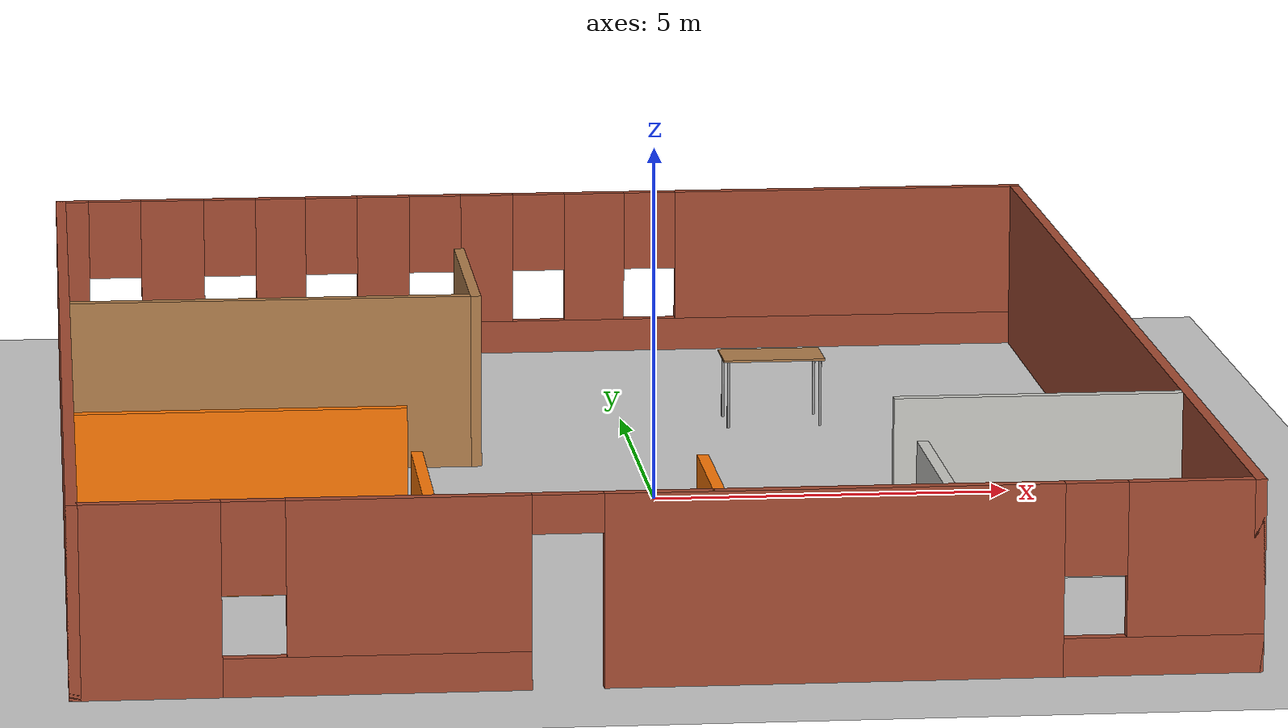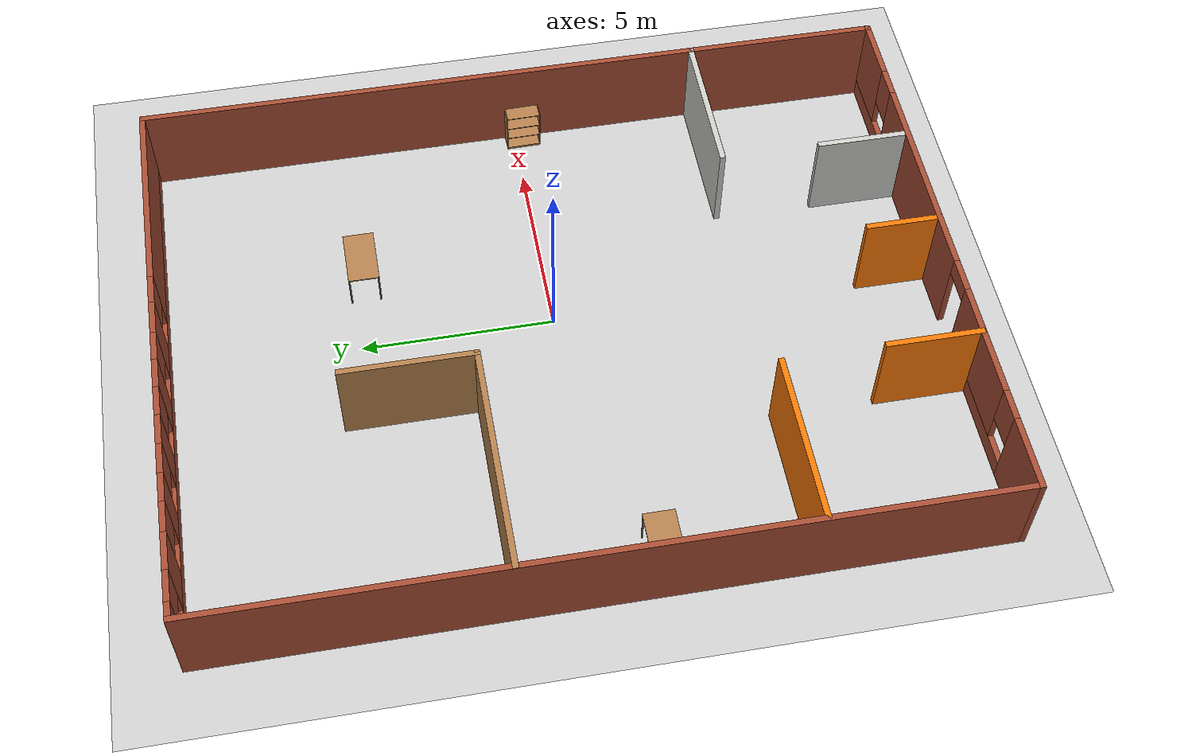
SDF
<sdf version="1.6">
 <world name="default">
  <plugin name="welcome_message" filename="libwelcome_message.so"/>
  <light name="sun" type="directional">
   <pose>0 0 10 0 -0 0</pose>
   <diffuse>0.8 0.8 0.8 1</diffuse>
   <specular>0.2 0.2 0.2 1</specular>
   <attenuation>
    <range>1000</range>
    <constant>0.9</constant>
    <linear>0.01</linear>
    <quadratic>0.001</quadratic>
   </attenuation>
   <direction>-0.5 0.1 -0.9</direction>
  </light>
  <model name="ground_plane">
   <static>1</static>
   <link name="link">
    <collision name="collision">
     <geometry><plane><normal>0 0 1</normal><size>100 100</size></plane></geometry>
     <surface>
      <contact><collide_bitmask>65535</collide_bitmask></contact>
      <friction><ode><mu>100</mu><mu2>50</mu2></ode></friction>
     </surface>
    </collision>
    <visual name="visual">
     <cast_shadows>0</cast_shadows>
     <geometry><plane><normal>0 0 1</normal><size>100 100</size></plane></geometry>
     <material>
      <script><uri>file://media/materials/scripts/gazebo.material</uri><name>Gazebo/Grey</name></script>
     </material>
    </visual>
   </link>
  </model>
  <gravity>0 0 -9.8</gravity>
  <magnetic_field>6e-06 2.3e-05 -4.2e-05</magnetic_field>
  <atmosphere type="adiabatic"/>
  <physics name="default_physics" default="0" type="ode">
   <max_step_size>0.001</max_step_size>
   <real_time_factor>1</real_time_factor>
   <real_time_update_rate>1000</real_time_update_rate>
  </physics>
  <scene><ambient>0.4 0.4 0.4 1</ambient><background>0.7 0.7 0.7 1</background><shadows>1</shadows></scene>
  <spherical_coordinates>
   <surface_model>EARTH_WGS84</surface_model>
   <latitude_deg>0</latitude_deg>
   <longitude_deg>0</longitude_deg>
   <elevation>0</elevation>
   <heading_deg>0</heading_deg>
  </spherical_coordinates>
  <model name="Apartment">
   <pose>-0.78403 0.000494 0 0 -0 0</pose>
   <link name="Wall_0">
    <collision name="Wall_0_Collision">
     <geometry><box><size>20 0.15 2.5</size></box></geometry>
     <pose>0 0 1.25 0 -0 0</pose>
    </collision>
    <visual name="Wall_0_Visual">
     <pose>0 0 1.25 0 -0 0</pose>
     <geometry><box><size>20 0.15 2.5</size></box></geometry>
     <material>
      <script><uri>file://media/materials/scripts/gazebo.material</uri><name>Gazebo/Bricks</name></script>
      <ambient>0.921569 0.807843 0.615686 1</ambient>
     </material>
     <meta><layer>0</layer></meta>
    </visual>
    <pose>-7.42433 0 0 0 -0 1.57073</pose>
   </link>
   <link name="Wall_12">
    <collision name="Wall_12_Collision">
     <geometry><box><size>2.5 0.15 2.5</size></box></geometry>
     <pose>0 0 1.25 0 -0 0</pose>
    </collision>
    <visual name="Wall_12_Visual">
     <pose>0 0 1.25 0 -0 0</pose>
     <geometry><box><size>2.5 0.15 2.5</size></box></geometry>
     <material>
      <script><uri>file://media/materials/scripts/gazebo.material</uri><name>Gazebo/Grey</name></script>
      <ambient>0.996078 0.47451 0.0196078 1</ambient>
     </material>
     <meta><layer>0</layer></meta>
    </visual>
    <pose>-3.01391 -8.72413 0 0 0 -1.5708</pose>
   </link>
   <link name="Wall_20">
    <collision name="Wall_20_Collision">
     <geometry><box><size>2.5 0.15 2.5</size></box></geometry>
     <pose>0 0 1.25 0 -0 0</pose>
    </collision>
    <visual name="Wall_20_Visual">
     <pose>0 0 1.25 0 -0 0</pose>
     <geometry><box><size>2.5 0.15 2.5</size></box></geometry>
     <material>
      <script><uri>file://media/materials/scripts/gazebo.material</uri><name>Gazebo/CeilingTiled</name></script>
      <ambient>1 1 1 1</ambient>
     </material>
     <meta><layer>0</layer></meta>
    </visual>
    <pose>3.49742 -8.74753 0 0 -0 1.5708</pose>
   </link>
   <link name="Wall_22">
    <collision name="Wall_22_Collision">
     <geometry><box><size>4 0.15 2.5</size></box></geometry>
     <pose>0 0 1.25 0 -0 0</pose>
    </collision>
    <visual name="Wall_22_Visual">
     <pose>0 0 1.25 0 -0 0</pose>
     <geometry><box><size>4 0.15 2.5</size></box></geometry>
     <material>
      <script><uri>file://media/materials/scripts/gazebo.material</uri><name>Gazebo/CeilingTiled</name></script>
      <ambient>1 1 1 1</ambient>
     </material>
     <meta><layer>0</layer></meta>
    </visual>
    <pose>5.47445 -4.93437 0 0 -0 3.14159</pose>
   </link>
   <link name="Wall_24">
    <collision name="Wall_24_Collision">
     <geometry><box><size>2 0.15 2.5</size></box></geometry>
     <pose>0 0 1.25 0 -0 0</pose>
    </collision>
    <visual name="Wall_24_Visual">
     <pose>0 0 1.25 0 -0 0</pose>
     <geometry><box><size>2 0.15 2.5</size></box></geometry>
     <material>
      <script><uri>file://media/materials/scripts/gazebo.material</uri><name>Gazebo/Grey</name></script>
      <ambient>0.996078 0.47451 0.0196078 1</ambient>
     </material>
     <meta><layer>0</layer></meta>
    </visual>
    <pose>0.601066 -8.99753 0 0 -0 1.5708</pose>
   </link>
   <link name="Wall_26">
    <collision name="Wall_26_Collision">
     <geometry><box><size>4.5 0.15 2.5</size></box></geometry>
     <pose>0 0 1.25 0 -0 0</pose>
    </collision>
    <visual name="Wall_26_Visual">
     <pose>0 0 1.25 0 -0 0</pose>
     <geometry><box><size>4.5 0.15 2.5</size></box></geometry>
     <material>
      <script><uri>file://media/materials/scripts/gazebo.material</uri><name>Gazebo/Grey</name></script>
      <ambient>0.996078 0.47451 0.0196078 1</ambient>
     </material>
     <meta><layer>0</layer></meta>
    </visual>
    <pose>-5.22914 -4.89414 0 0 -0 0</pose>
   </link>
   <link name="Wall_29">
    <collision name="Wall_29_Collision">
     <geometry><box><size>6 0.15 2.5</size></box></geometry>
     <pose>0 0 1.25 0 -0 0</pose>
    </collision>
    <visual name="Wall_29_Visual">
     <pose>0 0 1.25 0 -0 0</pose>
     <geometry><box><size>6 0.15 2.5</size></box></geometry>
     <material>
      <script><uri>file://media/materials/scripts/gazebo.material</uri><name>Gazebo/Wood</name></script>
      <ambient>1 1 1 1</ambient>
     </material>
     <meta><layer>0</layer></meta>
    </visual>
    <pose>-4.49077 2.26536 0 0 -0 0</pose>
   </link>
   <link name="Wall_31">
    <collision name="Wall_31_Collision">
     <geometry><box><size>3.5 0.15 2.5</size></box></geometry>
     <pose>0 0 1.25 0 -0 0</pose>
    </collision>
    <visual name="Wall_31_Visual">
     <pose>0 0 1.25 0 -0 0</pose>
     <geometry><box><size>3.5 0.15 2.5</size></box></geometry>
     <material>
      <script><uri>file://media/materials/scripts/gazebo.material</uri><name>Gazebo/Wood</name></script>
      <ambient>1 1 1 1</ambient>
     </material>
     <meta><layer>0</layer></meta>
    </visual>
    <pose>-1.56577 3.94036 0 0 -0 1.5708</pose>
   </link>
   <link name="Wall_5">
    <pose>2e-06 -9.925 0 0 -0 0</pose>
    <visual name="Wall_5_Visual_0">
     <pose>-6.54582 0 1.25 0 -0 0</pose>
     <geometry><box><size>1.90835 0.15 2.5</size></box></geometry>
     <material>
      <script><uri>file://media/materials/scripts/gazebo.material</uri><name>Gazebo/Bricks</name></script>
      <ambient>1 1 1 1</ambient>
     </material>
     <meta><layer>0</layer></meta>
    </visual>
    <collision name="Wall_5_Collision_0">
     <geometry><box><size>1.90835 0.15 2.5</size></box></geometry>
     <pose>-6.54582 0 1.25 0 -0 0</pose>
    </collision>
    <visual name="Wall_5_Visual_1">
     <pose>2.05413 0 1.25 0 -0 0</pose>
     <geometry><box><size>5.78748 0.15 2.5</size></box></geometry>
     <material>
      <script><uri>file://media/materials/scripts/gazebo.material</uri><name>Gazebo/Bricks</name></script>
      <ambient>1 1 1 1</ambient>
     </material>
     <meta><layer>0</layer></meta>
    </visual>
    <collision name="Wall_5_Collision_1">
     <geometry><box><size>5.78748 0.15 2.5</size></box></geometry>
     <pose>2.05413 0 1.25 0 -0 0</pose>
    </collision>
    <visual name="Wall_5_Visual_2">
     <pose>-3.66563 0 0.25 0 -0 0</pose>
     <geometry><box><size>3.85203 0.15 0.5</size></box></geometry>
     <material>
      <script><uri>file://media/materials/scripts/gazebo.material</uri><name>Gazebo/Bricks</name></script>
      <ambient>1 1 1 1</ambient>
     </material>
     <meta><layer>0</layer></meta>
    </visual>
    <collision name="Wall_5_Collision_2">
     <geometry><box><size>3.85203 0.15 0.5</size></box></geometry>
     <pose>-3.66563 0 0.25 0 -0 0</pose>
    </collision>
    <visual name="Wall_5_Visual_3">
     <pose>6.22393 0 0.25 0 -0 0</pose>
     <geometry><box><size>2.55213 0.15 0.5</size></box></geometry>
     <material>
      <script><uri>file://media/materials/scripts/gazebo.material</uri><name>Gazebo/Bricks</name></script>
      <ambient>1 1 1 1</ambient>
     </material>
     <meta><layer>0</layer></meta>
    </visual>
    <collision name="Wall_5_Collision_3">
     <geometry><box><size>2.55213 0.15 0.5</size></box></geometry>
     <pose>6.22393 0 0.25 0 -0 0</pose>
    </collision>
    <visual name="Wall_5_Visual_4">
     <pose>-3.26563 0 1.5 0 -0 0</pose>
     <geometry><box><size>3.05203 0.15 2</size></box></geometry>
     <material>
      <script><uri>file://media/materials/scripts/gazebo.material</uri><name>Gazebo/Bricks</name></script>
      <ambient>1 1 1 1</ambient>
     </material>
     <meta><layer>0</layer></meta>
    </visual>
    <collision name="Wall_5_Collision_4">
     <geometry><box><size>3.05203 0.15 2</size></box></geometry>
     <pose>-3.26563 0 1.5 0 -0 0</pose>
    </collision>
    <visual name="Wall_5_Visual_5">
     <pose>-3.26563 0 1.5 0 -0 0</pose>
     <geometry><box><size>3.05203 0.15 2</size></box></geometry>
     <material>
      <script><uri>file://media/materials/scripts/gazebo.material</uri><name>Gazebo/Bricks</name></script>
      <ambient>1 1 1 1</ambient>
     </material>
     <meta><layer>0</layer></meta>
    </visual>
    <collision name="Wall_5_Collision_5">
     <geometry><box><size>3.05203 0.15 2</size></box></geometry>
     <pose>-3.26563 0 1.5 0 -0 0</pose>
    </collision>
    <visual name="Wall_5_Visual_6">
     <pose>6.62393 0 1.5 0 -0 0</pose>
     <geometry><box><size>1.75213 0.15 2</size></box></geometry>
     <material>
      <script><uri>file://media/materials/scripts/gazebo.material</uri><name>Gazebo/Bricks</name></script>
      <ambient>1 1 1 1</ambient>
     </material>
     <meta><layer>0</layer></meta>
    </visual>
    <collision name="Wall_5_Collision_6">
     <geometry><box><size>1.75213 0.15 2</size></box></geometry>
     <pose>6.62393 0 1.5 0 -0 0</pose>
    </collision>
    <visual name="Wall_5_Visual_7">
     <pose>-5.19165 0 1.9 0 -0 0</pose>
     <geometry><box><size>0.8 0.15 1.2</size></box></geometry>
     <material>
      <script><uri>file://media/materials/scripts/gazebo.material</uri><name>Gazebo/Bricks</name></script>
      <ambient>1 1 1 1</ambient>
     </material>
     <meta><layer>0</layer></meta>
    </visual>
    <collision name="Wall_5_Collision_7">
     <geometry><box><size>0.8 0.15 1.2</size></box></geometry>
     <pose>-5.19165 0 1.9 0 -0 0</pose>
    </collision>
    <visual name="Wall_5_Visual_8">
     <pose>5.34787 0 1.9 0 -0 0</pose>
     <geometry><box><size>0.8 0.15 1.2</size></box></geometry>
     <material>
      <script><uri>file://media/materials/scripts/gazebo.material</uri><name>Gazebo/Bricks</name></script>
      <ambient>1 1 1 1</ambient>
     </material>
     <meta><layer>0</layer></meta>
    </visual>
    <collision name="Wall_5_Collision_8">
     <geometry><box><size>0.8 0.15 1.2</size></box></geometry>
     <pose>5.34787 0 1.9 0 -0 0</pose>
    </collision>
    <visual name="Wall_5_Visual_9">
     <pose>-1.28961 0 2.25 0 -0 0</pose>
     <geometry><box><size>0.9 0.15 0.5</size></box></geometry>
     <material>
      <script><uri>file://media/materials/scripts/gazebo.material</uri><name>Gazebo/Bricks</name></script>
      <ambient>1 1 1 1</ambient>
     </material>
     <meta><layer>0</layer></meta>
    </visual>
    <collision name="Wall_5_Collision_9">
     <geometry><box><size>0.9 0.15 0.5</size></box></geometry>
     <pose>-1.28961 0 2.25 0 -0 0</pose>
    </collision>
    <visual name="Wall_5_Visual_10">
     <pose>-1.28961 0 2.25 0 -0 0</pose>
     <geometry><box><size>0.9 0.15 0.5</size></box></geometry>
     <material>
      <script><uri>file://media/materials/scripts/gazebo.material</uri><name>Gazebo/Bricks</name></script>
      <ambient>1 1 1 1</ambient>
     </material>
     <meta><layer>0</layer></meta>
    </visual>
    <collision name="Wall_5_Collision_10">
     <geometry><box><size>0.9 0.15 0.5</size></box></geometry>
     <pose>-1.28961 0 2.25 0 -0 0</pose>
    </collision>
   </link>
   <link name="Wall_7">
    <collision name="Wall_7_Collision">
     <geometry><box><size>20 0.15 2.5</size></box></geometry>
     <pose>0 0 1.25 0 -0 0</pose>
    </collision>
    <visual name="Wall_7_Visual">
     <pose>0 0 1.25 0 -0 0</pose>
     <geometry><box><size>20 0.15 2.5</size></box></geometry>
     <material>
      <script><uri>file://media/materials/scripts/gazebo.material</uri><name>Gazebo/Bricks</name></script>
      <ambient>1 1 1 1</ambient>
     </material>
     <meta><layer>0</layer></meta>
    </visual>
    <pose>7.425 0 0 0 -0 1.5708</pose>
   </link>
   <link name="Wall_9">
    <pose>0.00067 9.925 0 0 -0 0</pose>
    <visual name="Wall_9_Visual_0">
     <pose>-7.2498 0 1.25 0 -0 0</pose>
     <geometry><box><size>0.499068 0.15 2.5</size></box></geometry>
     <material>
      <script><uri>file://media/materials/scripts/gazebo.material</uri><name>Gazebo/Bricks</name></script>
      <ambient>0.921569 0.807843 0.615686 1</ambient>
     </material>
     <meta><layer>0</layer></meta>
    </visual>
    <collision name="Wall_9_Collision_0">
     <geometry><box><size>0.499068 0.15 2.5</size></box></geometry>
     <pose>-7.2498 0 1.25 0 -0 0</pose>
    </collision>
    <visual name="Wall_9_Visual_1">
     <pose>0.249534 0 0.25 0 -0 0</pose>
     <geometry><box><size>14.4996 0.15 0.5</size></box></geometry>
     <material>
      <script><uri>file://media/materials/scripts/gazebo.material</uri><name>Gazebo/Bricks</name></script>
      <ambient>0.921569 0.807843 0.615686 1</ambient>
     </material>
     <meta><layer>0</layer></meta>
    </visual>
    <collision name="Wall_9_Collision_1">
     <geometry><box><size>14.4996 0.15 0.5</size></box></geometry>
     <pose>0.249534 0 0.25 0 -0 0</pose>
    </collision>
    <visual name="Wall_9_Visual_2">
     <pose>-5.71527 0 1.5 0 -0 0</pose>
     <geometry><box><size>0.969994 0.15 2</size></box></geometry>
     <material>
      <script><uri>file://media/materials/scripts/gazebo.material</uri><name>Gazebo/Bricks</name></script>
      <ambient>0.921569 0.807843 0.615686 1</ambient>
     </material>
     <meta><layer>0</layer></meta>
    </visual>
    <collision name="Wall_9_Collision_2">
     <geometry><box><size>0.969994 0.15 2</size></box></geometry>
     <pose>-5.71527 0 1.5 0 -0 0</pose>
    </collision>
    <visual name="Wall_9_Visual_3">
     <pose>-4.04584 0 1.5 0 -0 0</pose>
     <geometry><box><size>0.768859 0.15 2</size></box></geometry>
     <material>
      <script><uri>file://media/materials/scripts/gazebo.material</uri><name>Gazebo/Bricks</name></script>
      <ambient>0.921569 0.807843 0.615686 1</ambient>
     </material>
     <meta><layer>0</layer></meta>
    </visual>
    <collision name="Wall_9_Collision_3">
     <geometry><box><size>0.768859 0.15 2</size></box></geometry>
     <pose>-4.04584 0 1.5 0 -0 0</pose>
    </collision>
    <visual name="Wall_9_Visual_4">
     <pose>-2.45687 0 1.5 0 -0 0</pose>
     <geometry><box><size>0.809085 0.15 2</size></box></geometry>
     <material>
      <script><uri>file://media/materials/scripts/gazebo.material</uri><name>Gazebo/Bricks</name></script>
      <ambient>0.921569 0.807843 0.615686 1</ambient>
     </material>
     <meta><layer>0</layer></meta>
    </visual>
    <collision name="Wall_9_Collision_4">
     <geometry><box><size>0.809085 0.15 2</size></box></geometry>
     <pose>-2.45687 0 1.5 0 -0 0</pose>
    </collision>
    <visual name="Wall_9_Visual_5">
     <pose>-0.847783 0 1.5 0 -0 0</pose>
     <geometry><box><size>0.809086 0.15 2</size></box></geometry>
     <material>
      <script><uri>file://media/materials/scripts/gazebo.material</uri><name>Gazebo/Bricks</name></script>
      <ambient>0.921569 0.807843 0.615686 1</ambient>
     </material>
     <meta><layer>0</layer></meta>
    </visual>
    <collision name="Wall_9_Collision_5">
     <geometry><box><size>0.809086 0.15 2</size></box></geometry>
     <pose>-0.847783 0 1.5 0 -0 0</pose>
    </collision>
    <visual name="Wall_9_Visual_6">
     <pose>0.821644 0 1.5 0 -0 0</pose>
     <geometry><box><size>0.929767 0.15 2</size></box></geometry>
     <material>
      <script><uri>file://media/materials/scripts/gazebo.material</uri><name>Gazebo/Bricks</name></script>
      <ambient>0.921569 0.807843 0.615686 1</ambient>
     </material>
     <meta><layer>0</layer></meta>
    </visual>
    <collision name="Wall_9_Collision_6">
     <geometry><box><size>0.929767 0.15 2</size></box></geometry>
     <pose>0.821644 0 1.5 0 -0 0</pose>
    </collision>
    <visual name="Wall_9_Visual_7">
     <pose>4.79293 0 1.5 0 -0 0</pose>
     <geometry><box><size>5.4128 0.15 2</size></box></geometry>
     <material>
      <script><uri>file://media/materials/scripts/gazebo.material</uri><name>Gazebo/Bricks</name></script>
      <ambient>0.921569 0.807843 0.615686 1</ambient>
     </material>
     <meta><layer>0</layer></meta>
    </visual>
    <collision name="Wall_9_Collision_7">
     <geometry><box><size>5.4128 0.15 2</size></box></geometry>
     <pose>4.79293 0 1.5 0 -0 0</pose>
    </collision>
    <visual name="Wall_9_Visual_8">
     <pose>-6.60026 0 1.9 0 -0 0</pose>
     <geometry><box><size>0.8 0.15 1.2</size></box></geometry>
     <material>
      <script><uri>file://media/materials/scripts/gazebo.material</uri><name>Gazebo/Bricks</name></script>
      <ambient>0.921569 0.807843 0.615686 1</ambient>
     </material>
     <meta><layer>0</layer></meta>
    </visual>
    <collision name="Wall_9_Collision_8">
     <geometry><box><size>0.8 0.15 1.2</size></box></geometry>
     <pose>-6.60026 0 1.9 0 -0 0</pose>
    </collision>
    <visual name="Wall_9_Visual_9">
     <pose>-4.83027 0 1.9 0 -0 0</pose>
     <geometry><box><size>0.8 0.15 1.2</size></box></geometry>
     <material>
      <script><uri>file://media/materials/scripts/gazebo.material</uri><name>Gazebo/Bricks</name></script>
      <ambient>0.921569 0.807843 0.615686 1</ambient>
     </material>
     <meta><layer>0</layer></meta>
    </visual>
    <collision name="Wall_9_Collision_9">
     <geometry><box><size>0.8 0.15 1.2</size></box></geometry>
     <pose>-4.83027 0 1.9 0 -0 0</pose>
    </collision>
    <visual name="Wall_9_Visual_10">
     <pose>-3.26141 0 1.9 0 -0 0</pose>
     <geometry><box><size>0.8 0.15 1.2</size></box></geometry>
     <material>
      <script><uri>file://media/materials/scripts/gazebo.material</uri><name>Gazebo/Bricks</name></script>
      <ambient>0.921569 0.807843 0.615686 1</ambient>
     </material>
     <meta><layer>0</layer></meta>
    </visual>
    <collision name="Wall_9_Collision_10">
     <geometry><box><size>0.8 0.15 1.2</size></box></geometry>
     <pose>-3.26141 0 1.9 0 -0 0</pose>
    </collision>
    <visual name="Wall_9_Visual_11">
     <pose>-1.65233 0 1.9 0 -0 0</pose>
     <geometry><box><size>0.8 0.15 1.2</size></box></geometry>
     <material>
      <script><uri>file://media/materials/scripts/gazebo.material</uri><name>Gazebo/Bricks</name></script>
      <ambient>0.921569 0.807843 0.615686 1</ambient>
     </material>
     <meta><layer>0</layer></meta>
    </visual>
    <collision name="Wall_9_Collision_11">
     <geometry><box><size>0.8 0.15 1.2</size></box></geometry>
     <pose>-1.65233 0 1.9 0 -0 0</pose>
    </collision>
    <visual name="Wall_9_Visual_12">
     <pose>-0.04324 0 1.9 0 -0 0</pose>
     <geometry><box><size>0.8 0.15 1.2</size></box></geometry>
     <material>
      <script><uri>file://media/materials/scripts/gazebo.material</uri><name>Gazebo/Bricks</name></script>
      <ambient>0.921569 0.807843 0.615686 1</ambient>
     </material>
     <meta><layer>0</layer></meta>
    </visual>
    <collision name="Wall_9_Collision_12">
     <geometry><box><size>0.8 0.15 1.2</size></box></geometry>
     <pose>-0.04324 0 1.9 0 -0 0</pose>
    </collision>
    <visual name="Wall_9_Visual_13">
     <pose>1.68653 0 1.9 0 -0 0</pose>
     <geometry><box><size>0.8 0.15 1.2</size></box></geometry>
     <material>
      <script><uri>file://media/materials/scripts/gazebo.material</uri><name>Gazebo/Bricks</name></script>
      <ambient>0.921569 0.807843 0.615686 1</ambient>
     </material>
     <meta><layer>0</layer></meta>
    </visual>
    <collision name="Wall_9_Collision_13">
     <geometry><box><size>0.8 0.15 1.2</size></box></geometry>
     <pose>1.68653 0 1.9 0 -0 0</pose>
    </collision>
   </link>
   <static>1</static>
  </model>
  <model name="table">
   <static>1</static>
   <link name="link">
    <collision name="surface">
     <pose>0 0 1 0 -0 0</pose>
     <geometry><box><size>1.5 0.8 0.03</size></box></geometry>
     <surface><friction><ode><mu>0.6</mu><mu2>0.6</mu2></ode></friction></surface>
    </collision>
    <visual name="visual1">
     <pose>0 0 1 0 -0 0</pose>
     <geometry><box><size>1.5 0.8 0.03</size></box></geometry>
     <material>
      <script><uri>file://media/materials/scripts/gazebo.material</uri><name>Gazebo/Wood</name></script>
     </material>
    </visual>
    <collision name="front_left_leg">
     <pose>0.68 0.38 0.5 0 -0 0</pose>
     <geometry><cylinder><radius>0.02</radius><length>1</length></cylinder></geometry>
    </collision>
    <visual name="front_left_leg">
     <pose>0.68 0.38 0.5 0 -0 0</pose>
     <geometry><cylinder><radius>0.02</radius><length>1</length></cylinder></geometry>
     <material>
      <script><uri>file://media/materials/scripts/gazebo.material</uri><name>Gazebo/Grey</name></script>
     </material>
    </visual>
    <collision name="front_right_leg">
     <pose>0.68 -0.38 0.5 0 -0 0</pose>
     <geometry><cylinder><radius>0.02</radius><length>1</length></cylinder></geometry>
    </collision>
    <visual name="front_right_leg">
     <pose>0.68 -0.38 0.5 0 -0 0</pose>
     <geometry><cylinder><radius>0.02</radius><length>1</length></cylinder></geometry>
     <material>
      <script><uri>file://media/materials/scripts/gazebo.material</uri><name>Gazebo/Grey</name></script>
     </material>
    </visual>
    <collision name="back_right_leg">
     <pose>-0.68 -0.38 0.5 0 -0 0</pose>
     <geometry><cylinder><radius>0.02</radius><length>1</length></cylinder></geometry>
    </collision>
    <visual name="back_right_leg">
     <pose>-0.68 -0.38 0.5 0 -0 0</pose>
     <geometry><cylinder><radius>0.02</radius><length>1</length></cylinder></geometry>
     <material>
      <script><uri>file://media/materials/scripts/gazebo.material</uri><name>Gazebo/Grey</name></script>
     </material>
    </visual>
    <collision name="back_left_leg">
     <pose>-0.68 0.38 0.5 0 -0 0</pose>
     <geometry><cylinder><radius>0.02</radius><length>1</length></cylinder></geometry>
    </collision>
    <visual name="back_left_leg">
     <pose>-0.68 0.38 0.5 0 -0 0</pose>
     <geometry><cylinder><radius>0.02</radius><length>1</length></cylinder></geometry>
     <material>
      <script><uri>file://media/materials/scripts/gazebo.material</uri><name>Gazebo/Grey</name></script>
     </material>
    </visual>
   </link>
   <pose>-7.31542 -1.37918 0 0 -0 0</pose>
  </model>
  <model name="bookshelf">
   <static>1</static>
   <link name="link">
    <inertial><mass>1</mass></inertial>
    <collision name="back">
     <pose>0 0.005 0.6 0 -0 0</pose>
     <geometry><box><size>0.9 0.01 1.2</size></box></geometry>
    </collision>
    <visual name="visual1">
     <pose>0 0.005 0.6 0 -0 0</pose>
     <geometry><box><size>0.9 0.01 1.2</size></box></geometry>
     <material>
      <script><uri>file://media/materials/scripts/gazebo.material</uri><name>Gazebo/Wood</name></script>
     </material>
    </visual>
    <collision name="left_side">
     <pose>0.45 -0.195 0.6 0 -0 0</pose>
     <geometry><box><size>0.02 0.4 1.2</size></box></geometry>
    </collision>
    <visual name="visual2">
     <pose>0.45 -0.195 0.6 0 -0 0</pose>
     <geometry><box><size>0.02 0.4 1.2</size></box></geometry>
     <material>
      <script><uri>file://media/materials/scripts/gazebo.material</uri><name>Gazebo/Wood</name></script>
     </material>
    </visual>
    <collision name="right_side">
     <pose>-0.45 -0.195 0.6 0 -0 0</pose>
     <geometry><box><size>0.02 0.4 1.2</size></box></geometry>
    </collision>
    <visual name="visual3">
     <pose>-0.45 -0.195 0.6 0 -0 0</pose>
     <geometry><box><size>0.02 0.4 1.2</size></box></geometry>
     <material>
      <script><uri>file://media/materials/scripts/gazebo.material</uri><name>Gazebo/Wood</name></script>
     </material>
    </visual>
    <collision name="bottom">
     <pose>0 -0.195 0.03 0 -0 0</pose>
     <geometry><box><size>0.88 0.4 0.06</size></box></geometry>
    </collision>
    <visual name="visual4">
     <pose>0 -0.195 0.03 0 -0 0</pose>
     <geometry><box><size>0.88 0.4 0.06</size></box></geometry>
     <material>
      <script><uri>file://media/materials/scripts/gazebo.material</uri><name>Gazebo/Wood</name></script>
     </material>
    </visual>
    <collision name="top">
     <pose>0 -0.195 1.19 0 -0 0</pose>
     <geometry><box><size>0.88 0.4 0.02</size></box></geometry>
    </collision>
    <visual name="visual5">
     <pose>0 -0.195 1.19 0 -0 0</pose>
     <geometry><box><size>0.88 0.4 0.02</size></box></geometry>
     <material>
      <script><uri>file://media/materials/scripts/gazebo.material</uri><name>Gazebo/Wood</name></script>
     </material>
    </visual>
    <collision name="low_shelf">
     <pose>0 -0.195 0.43 0 -0 0</pose>
     <geometry><box><size>0.88 0.4 0.02</size></box></geometry>
    </collision>
    <visual name="visual6">
     <pose>0 -0.195 0.43 0 -0 0</pose>
     <geometry><box><size>0.88 0.4 0.02</size></box></geometry>
     <material>
      <script><uri>file://media/materials/scripts/gazebo.material</uri><name>Gazebo/Wood</name></script>
     </material>
    </visual>
    <collision name="high_shelf">
     <pose>0 -0.195 0.8 0 -0 0</pose>
     <geometry><box><size>0.88 0.4 0.02</size></box></geometry>
    </collision>
    <visual name="visual7">
     <pose>0 -0.195 0.8 0 -0 0</pose>
     <geometry><box><size>0.88 0.4 0.02</size></box></geometry>
     <material>
      <script><uri>file://media/materials/scripts/gazebo.material</uri><name>Gazebo/Wood</name></script>
     </material>
    </visual>
   </link>
   <pose>6.53271 -0.197414 0 0 0 -1.55123</pose>
  </model>
  <model name="white_ball">
   <link name="link">
    <inertial>
     <mass>1</mass>
     <inertia><ixx>0.1</ixx><ixy>0</ixy><ixz>0</ixz><iyy>0.1</iyy><iyz>0</iyz><izz>0.1</izz></inertia>
    </inertial>
    <visual name="visual">
     <geometry><sphere><radius>0.1</radius></sphere></geometry>
     <material>
      <script><name>Gazebo/White</name><uri>file://media/materials/scripts/gazebo.material</uri></script>
      <shader type="pixel"><normal_map>__default__</normal_map></shader>
      <ambient>1 1 1 1</ambient>
      <diffuse>1 1 1 1</diffuse>
      <specular>1 1 1 1</specular>
      <emissive>1 1 1 1</emissive>
     </material>
    </visual>
    <collision name="collision">
     <geometry><sphere><radius>0.1</radius></sphere></geometry>
     <surface>
      <friction>
       <ode><mu>1</mu><mu2>1</mu2><fdir1>0 0 0</fdir1><slip1>0</slip1><slip2>0</slip2></ode>
       <torsional>
        <coefficient>1</coefficient>
        <patch_radius>0</patch_radius>
        <surface_radius>0</surface_radius>
        <use_patch_radius>1</use_patch_radius>
        <ode><slip>0</slip></ode>
       </torsional>
      </friction>
      <bounce><restitution_coefficient>0</restitution_coefficient><threshold>1e+06</threshold></bounce>
      <contact>
       <collide_without_contact>0</collide_without_contact>
       <collide_without_contact_bitmask>1</collide_without_contact_bitmask>
       <collide_bitmask>1</collide_bitmask>
       <ode>
        <soft_cfm>0</soft_cfm>
        <soft_erp>0.2</soft_erp>
        <kp>1e+13</kp>
        <kd>1</kd>
        <max_vel>0.01</max_vel>
        <min_depth>0</min_depth>
       </ode>
       <bullet>
        <split_impulse>1</split_impulse>
        <split_impulse_penetration_threshold>-0.01</split_impulse_penetration_threshold>
        <soft_cfm>0</soft_cfm>
        <soft_erp>0.2</soft_erp>
        <kp>1e+13</kp>
        <kd>1</kd>
       </bullet>
      </contact>
     </surface>
    </collision>
   </link>
   <static>0</static>
   <pose>8.04903 0.366141 0.1 0 -0 0</pose>
  </model>
  <model name="table_0">
   <static>1</static>
   <link name="link">
    <collision name="surface">
     <pose>0 0 1 0 -0 0</pose>
     <geometry><box><size>1.5 0.8 0.03</size></box></geometry>
     <surface><friction><ode><mu>0.6</mu><mu2>0.6</mu2></ode></friction></surface>
    </collision>
    <visual name="visual1">
     <pose>0 0 1 0 -0 0</pose>
     <geometry><box><size>1.5 0.8 0.03</size></box></geometry>
     <material>
      <script><uri>file://media/materials/scripts/gazebo.material</uri><name>Gazebo/Wood</name></script>
     </material>
    </visual>
    <collision name="front_left_leg">
     <pose>0.68 0.38 0.5 0 -0 0</pose>
     <geometry><cylinder><radius>0.02</radius><length>1</length></cylinder></geometry>
    </collision>
    <visual name="front_left_leg">
     <pose>0.68 0.38 0.5 0 -0 0</pose>
     <geometry><cylinder><radius>0.02</radius><length>1</length></cylinder></geometry>
     <material>
      <script><uri>file://media/materials/scripts/gazebo.material</uri><name>Gazebo/Grey</name></script>
     </material>
    </visual>
    <collision name="front_right_leg">
     <pose>0.68 -0.38 0.5 0 -0 0</pose>
     <geometry><cylinder><radius>0.02</radius><length>1</length></cylinder></geometry>
    </collision>
    <visual name="front_right_leg">
     <pose>0.68 -0.38 0.5 0 -0 0</pose>
     <geometry><cylinder><radius>0.02</radius><length>1</length></cylinder></geometry>
     <material>
      <script><uri>file://media/materials/scripts/gazebo.material</uri><name>Gazebo/Grey</name></script>
     </material>
    </visual>
    <collision name="back_right_leg">
     <pose>-0.68 -0.38 0.5 0 -0 0</pose>
     <geometry><cylinder><radius>0.02</radius><length>1</length></cylinder></geometry>
    </collision>
    <visual name="back_right_leg">
     <pose>-0.68 -0.38 0.5 0 -0 0</pose>
     <geometry><cylinder><radius>0.02</radius><length>1</length></cylinder></geometry>
     <material>
      <script><uri>file://media/materials/scripts/gazebo.material</uri><name>Gazebo/Grey</name></script>
     </material>
    </visual>
    <collision name="back_left_leg">
     <pose>-0.68 0.38 0.5 0 -0 0</pose>
     <geometry><cylinder><radius>0.02</radius><length>1</length></cylinder></geometry>
    </collision>
    <visual name="back_left_leg">
     <pose>-0.68 0.38 0.5 0 -0 0</pose>
     <geometry><cylinder><radius>0.02</radius><length>1</length></cylinder></geometry>
     <material>
      <script><uri>file://media/materials/scripts/gazebo.material</uri><name>Gazebo/Grey</name></script>
     </material>
    </visual>
   </link>
   <pose>2.21123 4.71605 0 0 -0 0</pose>
  </model>
 </world>
</sdf>
